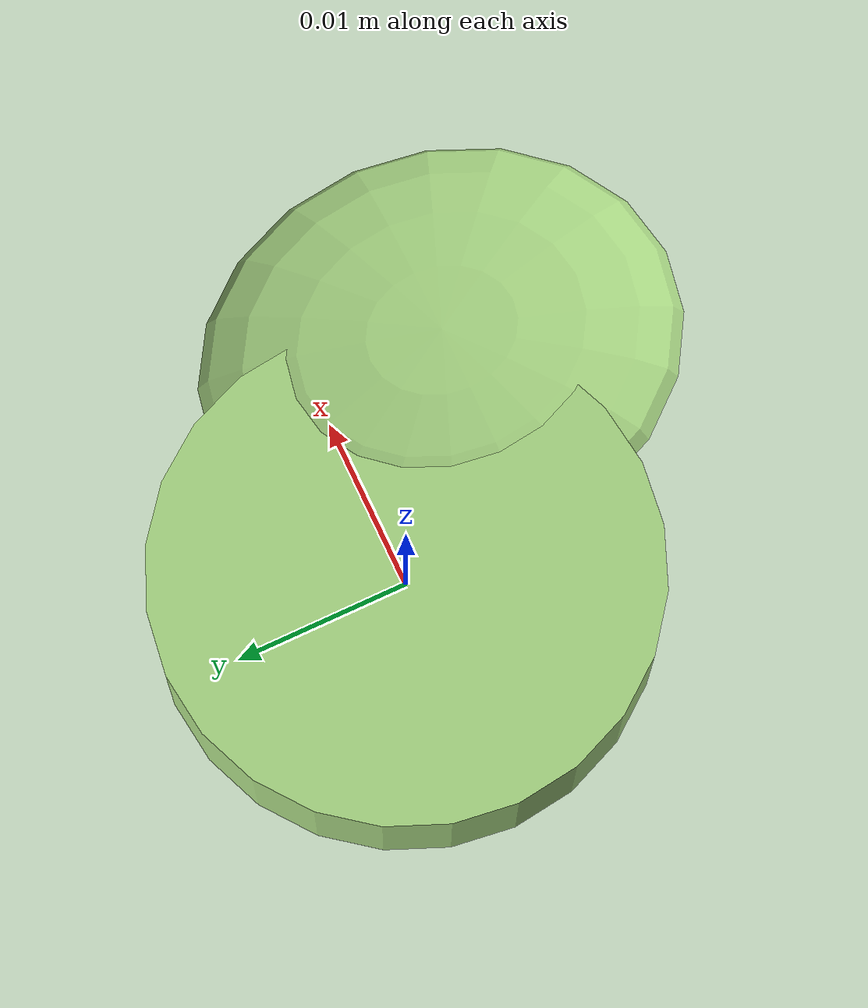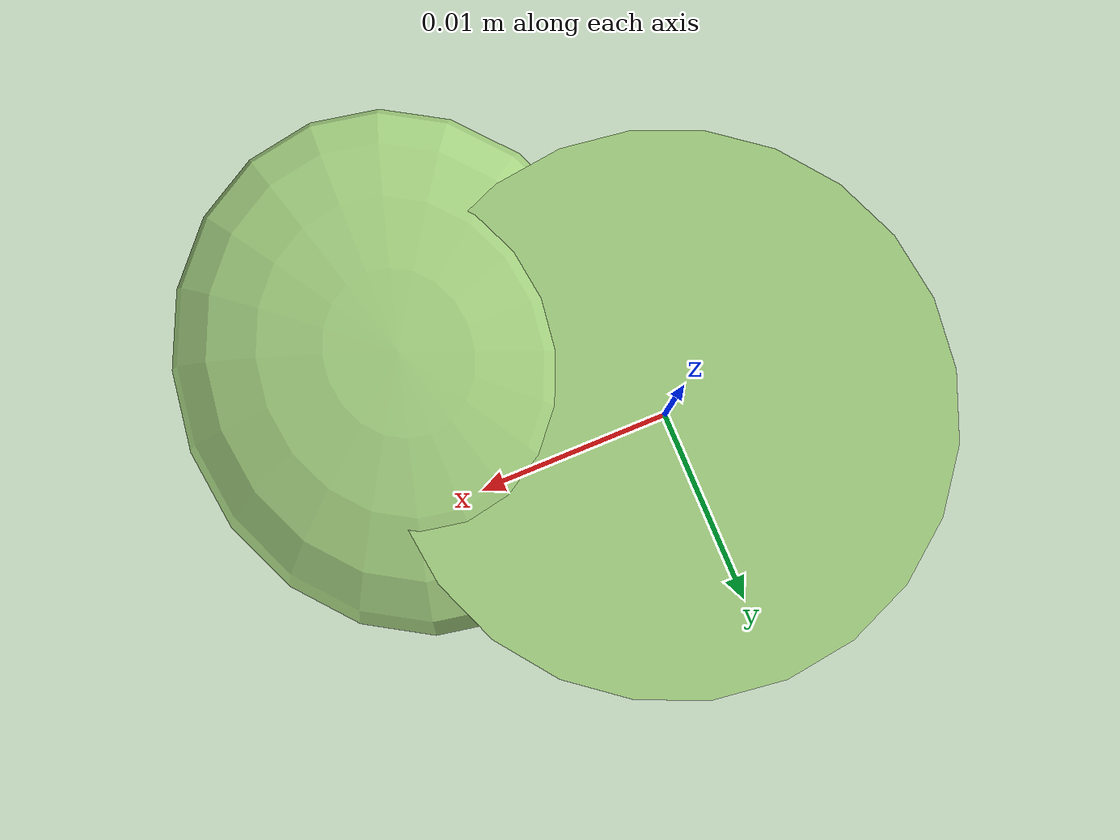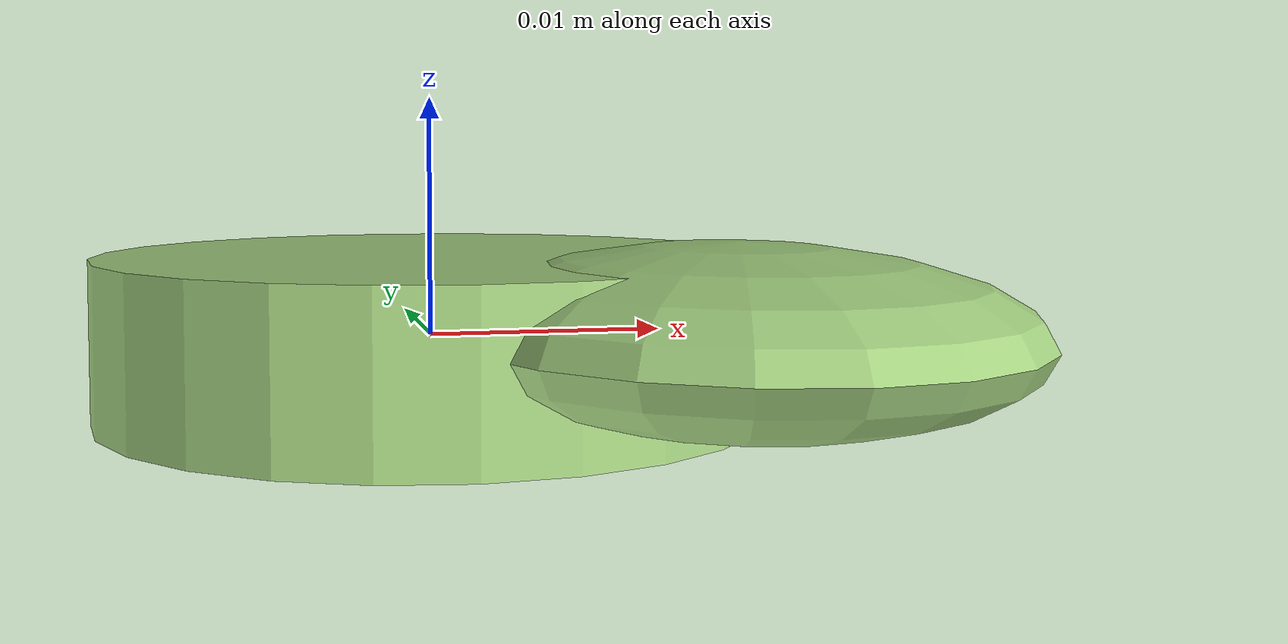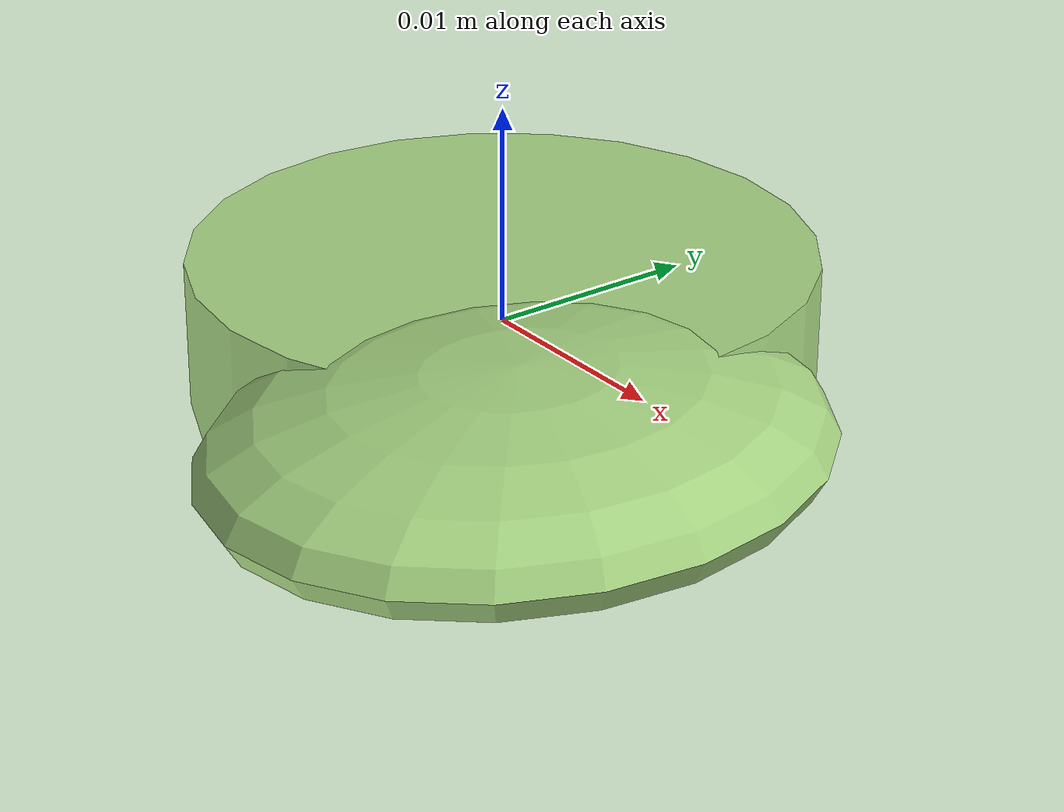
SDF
<?xml version="1.0" ?>
<!-- |    This document was autogenerated by xmacro from data/veggie_template/veggie_base.sdf.xacro  | -->
<!-- |    EDITING THIS FILE BY HAND IS NOT RECOMMENDED                                               | -->
<sdf version="1.8">
	<!-- Parameters -->
	<!-- Base -->
	<!-- Joint 0 -->
	<!-- Link 1 -->
	<!-- Joint 1 -->
	<!-- Link 2 -->
	<!-- Primitives -->
	<!-- All dimensions are half -->
	<!-- Object -->
	<model name="veggie">
		<!-- link0 -->
		<link name="link0">
			<inertial>
				<mass>0.004208508413040882</mass>
				<inertia>
					<ixx>2.2309096588779257e-07</ixx>
					<ixy>0</ixy>
					<ixz>0</ixz>
					<iyy>2.2309096588779257e-07</iyy>
					<iyz>0</iyz>
					<izz>4.136008824956122e-07</izz>
				</inertia>
			</inertial>
			<visual name="link0_visual">
				<pose>0 0 0 0 0 0</pose>
				<geometry>
					<cylinder>
						<radius>0.014019793805911241</radius>
						<length>0.006815442509318176</length>
					</cylinder>
				</geometry>
				<material>
					<ambient>0.659 0.839 0.514 1</ambient>
					<diffuse>0.659 0.839 0.514 1</diffuse>
					<specular>0 0 0 0</specular>
					<emissive>0 0 0 1</emissive>
				</material>
			</visual>
			<collision name="link0_collision">
				<pose>0 0 0 0 0 0 </pose>
				<geometry>
					<cylinder>
						<radius>0.014019793805911241</radius>
						<length>0.006815442509318176</length>
					</cylinder>
				</geometry>
			</collision>
		</link>
		<!-- link1 -->
		<joint name="joint0" type="fixed">
			<pose relative_to="link0">0.01115535828714166 -0.007330450950038532 0.0006495480692694959 0.0 0.0 0.0</pose>
			<parent>link0</parent>
			<child>link1</child>
		</joint>
		<link name="link1">
			<pose relative_to="joint0">0 0 0 0 0 0</pose>
			<inertial>
				<mass>0.0024443305089320187</mass>
				<inertia>
					<ixx>9.986124641035692e-08</ixx>
					<ixy>0</ixy>
					<ixz>0</ixz>
					<iyy>7.327676875713777e-08</iyy>
					<iyz>0</iyz>
					<izz>1.6042148257169227e-07</izz>
				</inertia>
			</inertial>
			<visual name="link1_visual">
				<pose>0 0 0 0 0 0</pose>
				<geometry>
					<ellipsoid>
						<radii>0.011699792102597171 0.013829859382630585 0.0036064041532691835</radii>
					</ellipsoid>
				</geometry>
				<material>
					<ambient>0.659 0.839 0.514 1</ambient>
					<diffuse>0.659 0.839 0.514 1</diffuse>
					<specular>0 0 0 0</specular>
					<emissive>0 0 0 1</emissive>
				</material>
			</visual>
			<collision name="link1_collision">
				<pose>0 0 0 0 0 0 </pose>
				<geometry>
					<ellipsoid>
						<radii>0.011699792102597171 0.013829859382630585 0.0036064041532691835</radii>
					</ellipsoid>
				</geometry>
			</collision>
		</link>
		<!-- link2 -->
	</model>
</sdf>
